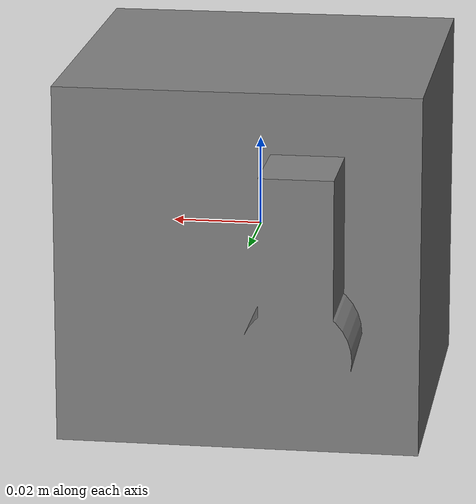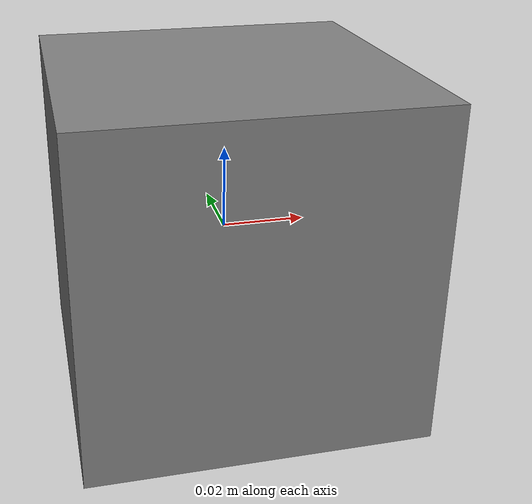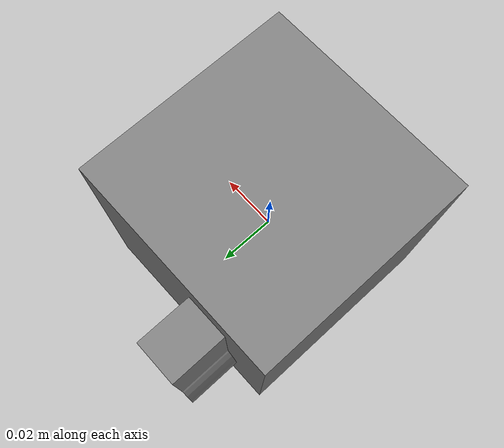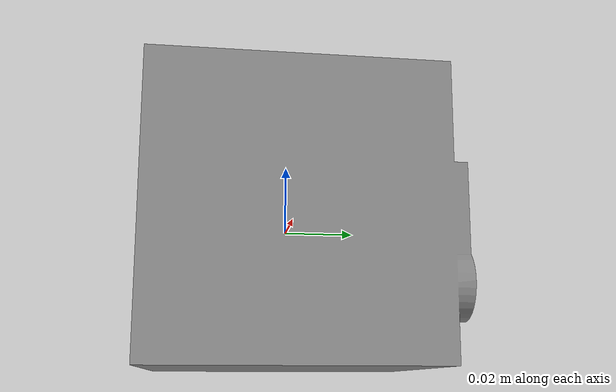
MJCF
<mujoco model="peg-hole">
	<default>
		<default class="visual">
			<geom type="mesh" contype="0" conaffinity="0"/>
		</default>
		<default class="collision">
			<geom type="mesh" rgba="0.5 0.5 0.5 0.0" density="100"/>
		</default>
	</default>
	<asset>
		<mesh name="Keyshiftx_peg_visual" file="new_meshes/Keyshiftx_cube_cap.obj" scale="1.00 1.00 1.00"/>
		<mesh name="Keyshiftx_peg_0" file="new_meshes/collision_meshes/Keyshiftx_cube_cap_decomp_0.obj" scale="1.00 1.00 1.00"/>
		<mesh name="Keyshiftx_peg_1" file="new_meshes/collision_meshes/Keyshiftx_cube_cap_decomp_1.obj" scale="1.00 1.00 1.00"/>
		<mesh name="Keyshiftx_peg_2" file="new_meshes/collision_meshes/Keyshiftx_cube_cap_decomp_2.obj" scale="1.00 1.00 1.00"/>
	</asset>
	<worldbody>
		<body name="Keyshiftx_peg">
			<body name="object">
				<geom name="Keyshiftx_peg_0" class="collision" friction="0.01 0.3 0.0001" mesh="Keyshiftx_peg_0" group="0"/>
				<geom name="Keyshiftx_peg_1" class="collision" friction="0.01 0.3 0.0001" mesh="Keyshiftx_peg_1" group="0"/>
				<geom name="Keyshiftx_peg_2" class="collision" friction="0.01 0.3 0.0001" mesh="Keyshiftx_peg_2" group="0"/>
				<geom name="Keyshiftx_peg_visual" class="visual" mesh="Keyshiftx_peg_visual" group="1"/>
			</body>
			<site rgba="0 0 0 0" size="0.005" pos="0 0 0" name="bottom_site"/>
			<site rgba="0 0 0 0" size="0.005" pos="0 0 0" name="top_site"/>
			<site rgba="0 0 0 0" size="0.005" pos="0 0 0" name="horizontal_radius_site"/>
		</body>
	</worldbody>
</mujoco>
